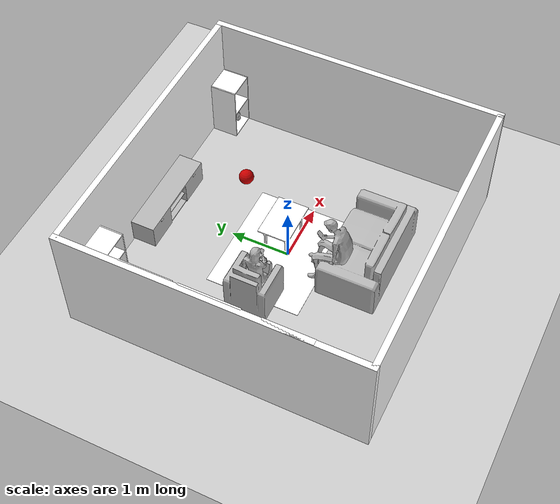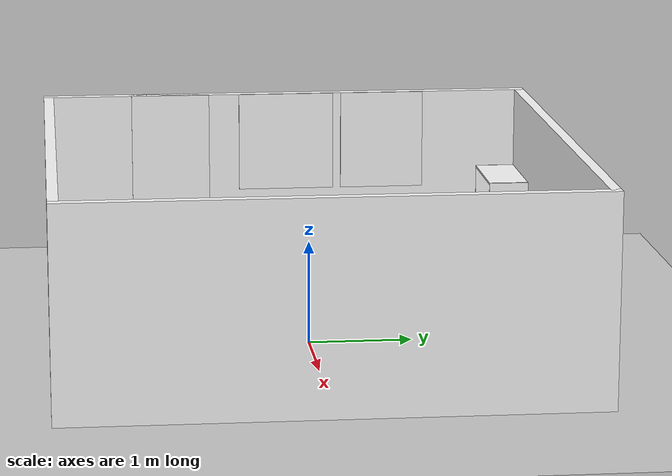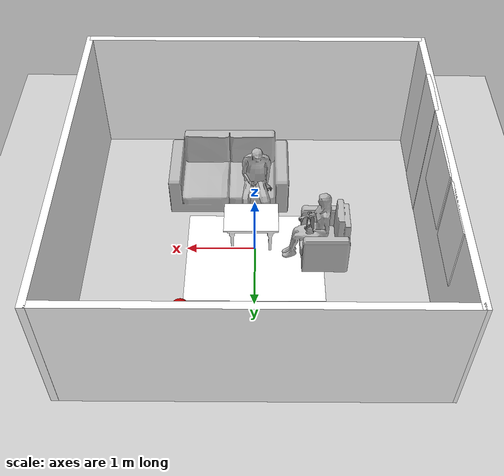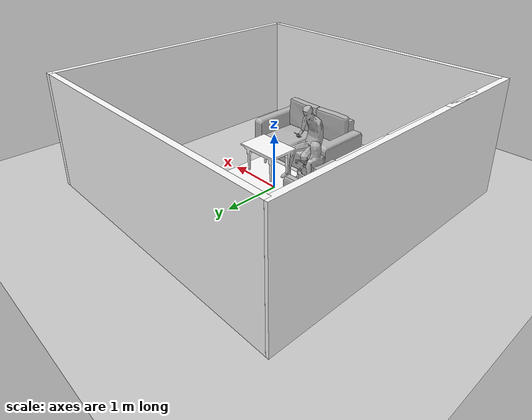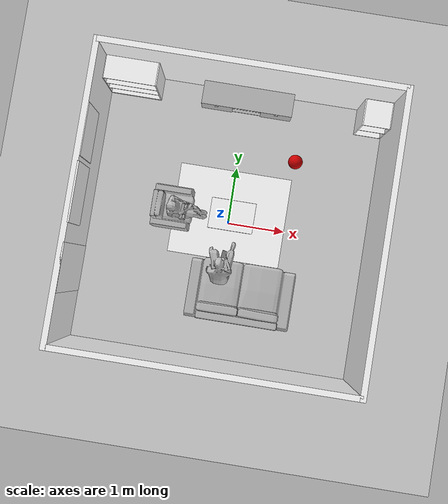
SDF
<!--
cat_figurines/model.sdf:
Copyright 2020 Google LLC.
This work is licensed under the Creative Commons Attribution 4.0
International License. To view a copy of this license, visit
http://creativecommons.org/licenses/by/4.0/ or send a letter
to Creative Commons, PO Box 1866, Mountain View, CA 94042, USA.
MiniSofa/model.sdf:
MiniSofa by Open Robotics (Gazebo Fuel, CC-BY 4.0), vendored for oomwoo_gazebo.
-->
<sdf version="1.10">
 <world name="default">
  <scene>
   <shadows>false</shadows>
   <ambient>0.400000006 0.400000006 0.400000006 1</ambient>
   <background>0.699999988 0.699999988 0.699999988 1</background>
  </scene>
  <physics type="ode">
   <real_time_update_rate>1000</real_time_update_rate>
   <max_step_size>0.001</max_step_size>
   <real_time_factor>1</real_time_factor>
   <ode>
    <solver>
     <type>quick</type>
     <iters>150</iters>
     <precon_iters>0</precon_iters>
     <sor>1.3999999999999999</sor>
     <use_dynamic_moi_rescaling>true</use_dynamic_moi_rescaling>
    </solver>
    <constraints>
     <cfm>1.0000000000000001e-05</cfm>
     <erp>0.20000000000000001</erp>
     <contact_max_correcting_vel>2000</contact_max_correcting_vel>
     <contact_surface_layer>0.01</contact_surface_layer>
    </constraints>
   </ode>
  </physics>
  <plugin name="gz::sim::systems::Physics" filename="gz-sim-physics-system"/>
  <plugin name="gz::sim::systems::UserCommands" filename="gz-sim-user-commands-system"/>
  <plugin name="gz::sim::systems::SceneBroadcaster" filename="gz-sim-scene-broadcaster-system"/>
  <plugin name="gz::sim::systems::Sensors" filename="gz-sim-sensors-system">
   <render_engine>ogre2</render_engine>
  </plugin>
  <plugin name="gz::sim::systems::Imu" filename="gz-sim-imu-system"/>
  <gravity>0 0 -9.8000000000000007</gravity>
  <magnetic_field>5.5644999999999998e-06 2.2875799999999999e-05 -4.2388400000000002e-05</magnetic_field>
  <atmosphere type="adiabatic"/>
  <include><uri>model://ground plane</uri><name>ground_plane</name></include>
  <model name="makerspet_poster">
   <static>true</static>
   <include><uri>model://makerspet_poster</uri></include>
   <pose>-2.45 1 1.5 0 -0 0</pose>
  </model>
  <model name="kaiaai_poster">
   <static>true</static>
   <include><uri>model://kaiaai_poster</uri></include>
   <pose>-2.45 0 1.5 0 -0 0</pose>
  </model>
  <model name="wall_0">
   <static>true</static>
   <include><uri>model://room_wall_2x5m</uri></include>
   <pose>-2.5 0 1 0 -0 0</pose>
  </model>
  <model name="wall_1">
   <static>true</static>
   <include><uri>model://room_wall_2x5m</uri></include>
   <pose>2.5 0 1 0 -0 0</pose>
  </model>
  <model name="wall_2">
   <static>true</static>
   <include><uri>model://room_wall_2x5m</uri></include>
   <pose>0 2.45 1 0 -0 1.5707</pose>
  </model>
  <model name="wall_3">
   <static>true</static>
   <include><uri>model://room_wall_2x5m</uri></include>
   <pose>0 -2.45 1 0 -0 1.5707</pose>
  </model>
  <light name="sun" type="directional">
   <cast_shadows>false</cast_shadows>
   <pose>0 0 10 0 -0 0</pose>
   <diffuse>0.8 0.8 0.8 1</diffuse>
   <specular>0.2 0.2 0.2 1</specular>
   <intensity>4</intensity>
   <attenuation>
    <range>1000</range>
    <constant>0.9</constant>
    <linear>0.01</linear>
    <quadratic>0.001</quadratic>
   </attenuation>
   <direction>-0.5 0.1 -0.9</direction>
   <spot><inner_angle>0</inner_angle><outer_angle>0</outer_angle><falloff>0</falloff></spot>
  </light>
  <model name="door_08x2m">
   <static>true</static>
   <include><uri>model://door_08x2m</uri></include>
   <pose>-2.495 -1.2 1 0 -0 0</pose>
  </model>
  <model name="cabinet">
   <static>true</static>
   <pose>2.21 2.17 0 0 -0 1.5707</pose>
   <include><uri>model://Cabinet</uri></include>
  </model>
  <model name="Bookshelf">
   <static>true</static>
   <pose>-2 2.4 0 0 -0 0</pose>
   <include><uri>model://Bookshelf</uri></include>
  </model>
  <model name="Cat Figurines">
   <static>true</static>
   <pose>2.21368 2.13863 0.019163 -0.003852 -0.005692 -1e-06</pose>
   <include><uri>model://cat_figurines</uri></include>
  </model>
  <model name="FemaleVisitorSit">
   <static>true</static>
   <pose>-0.91 0.09 0 0 -0 1.5707</pose>
   <include><uri>model://FemaleVisitorSit</uri></include>
  </model>
  <model name="MaleVisitorSit">
   <static>true</static>
   <pose>0 -0.91 0 0 -0 3.1415</pose>
   <include><uri>model://MaleVisitorSit</uri></include>
  </model>
  <model name="MiniSofa">
   <static>true</static>
   <pose>-1 0.1 0 0 -0 3.1415</pose>
   <include><uri>model://MiniSofa</uri></include>
  </model>
  <model name="Sofa">
   <static>true</static>
   <pose>0.394 -1.2 0 0 -0 1.5707</pose>
   <include><uri>model://Sofa</uri></include>
  </model>
  <model name="TVStand">
   <static>true</static>
   <pose>0 2.2 0 0 -0 0</pose>
   <include><uri>model://TVStand</uri></include>
  </model>
  <model name="red_ball_10in">
   <static>false</static>
   <pose>1 1.25 0.127 0 -0 0</pose>
   <include><uri>model://red_ball_10in</uri></include>
  </model>
  <model name="rug_ivory_2m">
   <static>true</static>
   <pose>0 0.15 0 0 -0 1.5707</pose>
   <include><uri>model://rug_ivory_2m</uri></include>
  </model>
  <model name="TableMarble">
   <static>true</static>
   <pose>0 0.1 0.324 0 -0 1.5708</pose>
   <include><uri>model://TableMarble</uri></include>
  </model>
 </world>
</sdf>

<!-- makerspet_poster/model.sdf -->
<sdf version='1.4'>
  <model name='makerspet_poster'>
    <link name="link">
      <visual name="visual">
        <geometry>
          <box>
            <size>0.03 0.85714 1</size>
          </box>
        </geometry>
        <material>
          <pbr>
            <metal>
              <albedo_map>textures/makerspet_logo_600x700.png</albedo_map>
            <metalness>0.0</metalness><roughness>0.80</roughness>
            </metal>
          </pbr>
          <ambient>1 1 1 1</ambient>
          <diffuse>1 1 1 1</diffuse>
          <specular>1 1 1 1</specular>
          <emissive>0 0 0 1</emissive>
        </material>
      </visual>
    </link>
    <static>1</static>
    <allow_auto_disable>1</allow_auto_disable>
  </model>
</sdf>

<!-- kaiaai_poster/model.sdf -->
<sdf version='1.4'>
  <model name='kaiaai_poster'>
    <link name="link">
      <visual name="visual">
        <geometry>
          <box>
            <size>0.03 0.9782 1</size>
          </box>
        </geometry>
        <material>
          <pbr>
            <metal>
              <albedo_map>textures/kaiaai_logo_450x460.png</albedo_map>
            <metalness>0.0</metalness><roughness>0.80</roughness>
            </metal>
          </pbr>
          <ambient>1 1 1 1</ambient>
          <diffuse>1 1 1 1</diffuse>
          <specular>1 1 1 1</specular>
          <emissive>0 0 0 1</emissive>
        </material>
      </visual>
    </link>
    <static>1</static>
    <allow_auto_disable>1</allow_auto_disable>
  </model>
</sdf>

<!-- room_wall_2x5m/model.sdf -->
<sdf version='1.4'>
  <model name='room_wall_2x5m'>
    <link name="link">
      <visual name="visual">
        <geometry>
          <box>
            <size>0.1 5.0 2.0</size>
          </box>
        </geometry>
        <material>
          <pbr>
            <metal>
              <albedo_map>textures/wall_texture_1404x562.jpg</albedo_map>
            <metalness>0.0</metalness><roughness>0.90</roughness>
            </metal>
          </pbr>
          <ambient>1 1 1 1</ambient>
          <diffuse>1 1 1 1</diffuse>
          <specular>1 1 1 1</specular>
          <emissive>0 0 0 1</emissive>
        </material>
        <cast_shadows>1</cast_shadows>
        <transparency>0</transparency>
      </visual>
      <collision name ="collision">
        <geometry>
           <box>
            <size>0.1 5.0 2.0</size>
          </box>
        </geometry>
      </collision>
    </link>
    <static>1</static>
    <allow_auto_disable>1</allow_auto_disable>
  </model>
</sdf>

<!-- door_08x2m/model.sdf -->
<sdf version='1.4'>
  <model name='door_08x2m'>
    <link name="link">
      <visual name="visual">
        <geometry>
          <box>
            <size>0.1 0.8 2</size>
          </box>
        </geometry>
        <material>
          <pbr>
            <metal>
              <albedo_map>textures/door_08x2m.png</albedo_map>
            <metalness>0.0</metalness><roughness>0.70</roughness>
            </metal>
          </pbr>
          <ambient>1 1 1 1</ambient>
          <diffuse>1 1 1 1</diffuse>
          <specular>1 1 1 1</specular>
          <emissive>0 0 0 1</emissive>
        </material>
        <cast_shadows>1</cast_shadows>
        <transparency>0</transparency>
      </visual>
    </link>
    <static>1</static>
    <allow_auto_disable>1</allow_auto_disable>
  </model>
</sdf>

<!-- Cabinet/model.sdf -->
<sdf version="1.5">
  <model name="cabinet">
    <static>true</static>
    <link name="cabinet_bottom_plate">
      <inertial>
        <pose>0 0 -1 0 0 0</pose>
        <inertia>
          <ixx>2.050000</ixx>
          <ixy>0</ixy>
          <ixz>0</ixz>
          <iyy>2.050000</iyy>
          <iyz>0</iyz>
          <izz>2.050000</izz>
        </inertia>
        <mass>25.000000</mass>
      </inertial>
      <collision name="cabinet_bottom_plate_geom">
        <pose>0 0 0.010000 0 0 0</pose>
        <geometry>
          <box>
            <size>0.450000 0.450000 0.020000</size>
          </box>
        </geometry>
      </collision>
      <visual name="cabinet_bottom_plate_geom_visual">
        <pose>0 0 0.010000 0 0 0</pose>
        <geometry>
          <box>
            <size>0.450000 0.450000 0.020000</size>
          </box>
        </geometry>
        <material>
          <pbr>
            <metal>
              <albedo_map>textures/wood.png</albedo_map>
            </metal>
          </pbr>
          <ambient>1 1 1 1</ambient>
          <diffuse>1 1 1 1</diffuse>
          <specular>0.2 0.2 0.2 1</specular>                                                         <emissive>0 0 0 1</emissive>
        </material>
        <cast_shadows>1</cast_shadows>
        <transparency>0</transparency>
      </visual>
      <collision name="cabinet_bottom_plate_geom_cabinet_back_plate">
        <pose>0.235000 0 0.510000 0 0 0</pose>
        <geometry>
          <box>
            <size>0.020000 0.450000 1.020000</size>
          </box>
        </geometry>
      </collision>
      <visual name="cabinet_bottom_plate_geom_cabinet_back_plate_visual">
        <pose>0.235000 0 0.510000 0 0 0</pose>
        <geometry>
          <box>
            <size>0.020000 0.450000 1.020000</size>
          </box>
        </geometry>
        <material>
          <pbr>
            <metal>
              <albedo_map>textures/wood.png</albedo_map>
            </metal>
          </pbr>
          <ambient>1 1 1 1</ambient>
          <diffuse>1 1 1 1</diffuse>
          <specular>0.2 0.2 0.2 1</specular>                                                         <emissive>0 0 0 1</emissive>
        </material>
        <cast_shadows>1</cast_shadows>
        <transparency>0</transparency>
      </visual>
      <collision name="cabinet_bottom_plate_geom_cabinet_left_plate">
        <pose>0 0.235000 0.510000 0 0 0</pose>
        <geometry>
          <box>
            <size>0.450000 0.020000 1.020000</size>
          </box>
        </geometry>
      </collision>
      <visual name="cabinet_bottom_plate_geom_cabinet_left_plate_visual">
        <pose>0 0.235000 0.510000 0 0 0</pose>
        <geometry>
          <box>
            <size>0.450000 0.020000 1.020000</size>
          </box>
        </geometry>
        <material>
          <pbr>
            <metal>
              <albedo_map>textures/wood.png</albedo_map>
            </metal>
          </pbr>
          <ambient>1 1 1 1</ambient>
          <diffuse>1 1 1 1</diffuse>
          <specular>0.2 0.2 0.2 1</specular>                                                         <emissive>0 0 0 1</emissive>
        </material>
        <cast_shadows>1</cast_shadows>
        <transparency>0</transparency>
      </visual>
      <collision name="cabinet_bottom_plate_geom_cabinet_middle_plate">
        <pose>0 0 0.510000 0 0 0</pose>
        <geometry>
          <box>
            <size>0.450000 0.450000 0.020000</size>
          </box>
        </geometry>
      </collision>
      <visual name="cabinet_bottom_plate_geom_cabinet_middle_plate_visual">
        <pose>0 0 0.510000 0 0 0</pose>
        <geometry>
          <box>
            <size>0.450000 0.450000 0.020000</size>
          </box>
        </geometry>
        <material>
          <pbr>
            <metal>
              <albedo_map>textures/wood.png</albedo_map>
            </metal>
          </pbr>
          <ambient>1 1 1 1</ambient>
          <diffuse>1 1 1 1</diffuse>
          <specular>0.2 0.2 0.2 1</specular>                                                         <emissive>0 0 0 1</emissive>
        </material>
        <cast_shadows>1</cast_shadows>
        <transparency>0</transparency>
      </visual>
      <collision name="cabinet_bottom_plate_geom_cabinet_right_plate">
        <pose>0 -0.235000 0.510000 0 0 0</pose>
        <geometry>
          <box>
            <size>0.450000 0.020000 1.020000</size>
          </box>
        </geometry>
      </collision>
      <visual name="cabinet_bottom_plate_geom_cabinet_right_plate_visual">
        <pose>0 -0.235000 0.510000 0 0 0</pose>
        <geometry>
          <box>
            <size>0.450000 0.020000 1.020000</size>
          </box>
        </geometry>
        <material>
          <pbr>
            <metal>
              <albedo_map>textures/wood.png</albedo_map>
            </metal>
          </pbr>
          <ambient>1 1 1 1</ambient>
          <diffuse>1 1 1 1</diffuse>
          <specular>0.2 0.2 0.2 1</specular>                                                         <emissive>0 0 0 1</emissive>
        </material>
        <cast_shadows>1</cast_shadows>
        <transparency>0</transparency>
      </visual>
      <collision name="cabinet_bottom_plate_geom_cabinet_top_plate">
        <pose>0 0 1.010000 0 0 0</pose>
        <geometry>
          <box>
            <size>0.450000 0.450000 0.020000</size>
          </box>
        </geometry>
      </collision>
      <visual name="cabinet_bottom_plate_geom_cabinet_top_plate_visual">
        <pose>0 0 1.010000 0 0 0</pose>
        <geometry>
          <box>
            <size>0.450000 0.450000 0.020000</size>
          </box>
        </geometry>
        <material>
          <pbr>
            <metal>
              <albedo_map>textures/wood.png</albedo_map>
            </metal>
          </pbr>
          <ambient>1 1 1 1</ambient>
          <diffuse>1 1 1 1</diffuse>
          <specular>0.2 0.2 0.2 1</specular>                                                         <emissive>0 0 0 1</emissive>
        </material>
        <cast_shadows>1</cast_shadows>
        <transparency>0</transparency>
      </visual>
    </link>
  </model>
</sdf>

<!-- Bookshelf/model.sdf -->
<sdf version="1.5">
  <model name="Bookshelf">
    <static>true</static>
    <link name="link">
      <inertial>
        <mass>1.0</mass>
      </inertial>
      <collision name="back">
        <pose>0 0.005 0.6 0 0 0</pose>
        <geometry>
          <box>
            <size>0.9 0.01 1.2</size>
          </box>
        </geometry>
      </collision>
      <visual name="visual1">
        <pose>0 0.005 0.6 0 0 0</pose>
        <geometry>
          <box>
            <size>0.9 0.01 1.2</size>
          </box>
        </geometry>
        <material>
          <diffuse>1.0 1.0 1.0</diffuse>
          <pbr>
            <metal>
              <albedo_map>textures/bookshelf_diffuse.jpg</albedo_map>
            </metal>
          </pbr>
        </material>
      </visual>
      <collision name="left_side">
        <pose>0.45 -0.195 0.6 0 0 0</pose>
        <geometry>
          <box>
            <size>0.02 0.4 1.2</size>
          </box>
        </geometry>
      </collision>
      <visual name="visual2">
        <pose>0.45 -0.195 0.6 0 0 0</pose>
        <geometry>
          <box>
            <size>0.02 0.4 1.2</size>
          </box>
        </geometry>
        <material>
          <diffuse>1.0 1.0 1.0</diffuse>
          <pbr>
            <metal>
              <albedo_map>textures/bookshelf_diffuse.jpg</albedo_map>
            </metal>
          </pbr>
        </material>
      </visual>
      <collision name="right_side">
        <pose>-0.45 -0.195 0.6 0 0 0</pose>
        <geometry>
          <box>
            <size>0.02 0.4 1.2</size>
          </box>
        </geometry>
      </collision>
      <visual name="visual3">
        <pose>-0.45 -0.195 0.6 0 0 0</pose>
        <geometry>
          <box>
            <size>0.02 0.4 1.2</size>
          </box>
        </geometry>
        <material>
          <diffuse>1.0 1.0 1.0</diffuse>
          <pbr>
            <metal>
              <albedo_map>textures/bookshelf_diffuse.jpg</albedo_map>
            </metal>
          </pbr>
        </material>
      </visual>
      <collision name="bottom">
        <pose>0 -0.195 0.03 0 0 0</pose>
        <geometry>
          <box>
            <size>0.88 0.4 0.06</size>
          </box>
        </geometry>
      </collision>
      <visual name="visual4">
        <pose>0 -0.195 0.03 0 0 0</pose>
        <geometry>
          <box>
            <size>0.88 0.4 0.06</size>
          </box>
        </geometry>
        <material>
          <diffuse>1.0 1.0 1.0</diffuse>
          <pbr>
            <metal>
              <albedo_map>textures/bookshelf_diffuse.jpg</albedo_map>
            </metal>
          </pbr>
        </material>
      </visual>
      <collision name="top">
        <pose>0 -0.195 1.19 0 0 0</pose>
        <geometry>
          <box>
            <size>0.88 0.4 0.02</size>
          </box>
        </geometry>
      </collision>
      <visual name="visual5">
        <pose>0 -0.195 1.19 0 0 0</pose>
        <geometry>
          <box>
            <size>0.88 0.4 0.02</size>
          </box>
        </geometry>
        <material>
          <diffuse>1.0 1.0 1.0</diffuse>
          <pbr>
            <metal>
              <albedo_map>textures/bookshelf_diffuse.jpg</albedo_map>
            </metal>
          </pbr>
        </material>
      </visual>
      <collision name="low_shelf">
        <pose>0 -0.195 0.43 0 0 0</pose>
        <geometry>
          <box>
            <size>0.88 0.4 0.02</size>
          </box>
        </geometry>
      </collision>
      <visual name="visual6">
        <pose>0 -0.195 0.43 0 0 0</pose>
        <geometry>
          <box>
            <size>0.88 0.4 0.02</size>
          </box>
        </geometry>
        <material>
          <diffuse>1.0 1.0 1.0</diffuse>
          <pbr>
            <metal>
              <albedo_map>textures/bookshelf_diffuse.jpg</albedo_map>
            </metal>
          </pbr>
        </material>
      </visual>
      <collision name="high_shelf">
        <pose>0 -0.195 0.8 0 0 0</pose>
        <geometry>
          <box>
            <size>0.88 0.4 0.02</size>
          </box>
        </geometry>
      </collision>
      <visual name="visual7">
        <pose>0 -0.195 0.8 0 0 0</pose>
        <geometry>
          <box>
            <size>0.88 0.4 0.02</size>
          </box>
        </geometry>
        <material>
          <diffuse>1.0 1.0 1.0</diffuse>
          <pbr>
            <metal>
              <albedo_map>textures/bookshelf_diffuse.jpg</albedo_map>
            </metal>
          </pbr>
        </material>
      </visual>
    </link>
  </model>
</sdf>

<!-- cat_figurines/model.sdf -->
<sdf version="1.6">
  <model name="Cat Figurines">
    <link name="link_0">
      <visual name="visual">
        <geometry>
          <mesh>
            <uri>meshes/model.obj</uri>
            <scale>3 3 3</scale>
          </mesh>
        </geometry>
      </visual>
      <collision name="collision_0">
        <geometry>
          <mesh>
            <uri>meshes/model.obj</uri>
            <scale>3 3 3</scale>
          </mesh>
        </geometry>
      </collision>
    </link>
  </model>
</sdf>

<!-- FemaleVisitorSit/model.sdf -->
<sdf version="1.6">
  <model name="FemaleVisitorSit">
   <static>true</static>
    <link name="body">
      <pose>0 0 0 0 0 0</pose>

      <visual name="visual">
        <geometry>
          <mesh>
            <uri>meshes/FemaleVisitorSit.obj</uri>
          </mesh>
        </geometry>
      </visual>

      <collision name="collision">
        <geometry>
          <mesh>
            <uri>meshes/FemaleVisitorSit.obj</uri>
          </mesh>
        </geometry>
      </collision>

    </link>
  </model>
</sdf>

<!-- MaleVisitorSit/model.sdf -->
<sdf version="1.6">
  <model name="MaleVisitorSit">
   <static>true</static>
    <link name="body">
      <pose>0 0 0 0 0 0</pose>

      <visual name="visual">
        <geometry>
          <mesh>
            <uri>meshes/MaleVisitorSit.obj</uri>
          </mesh>
        </geometry>
      </visual>

      <collision name="collision">
        <geometry>
          <mesh>
            <uri>meshes/MaleVisitorSit.obj</uri>
          </mesh>
        </geometry>
      </collision>

    </link>
  </model>
</sdf>

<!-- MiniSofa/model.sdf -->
<sdf version="1.6">
  <model name='MiniSofa'>
    <link name="body">
      <pose>0 0 0 0 0 -1.57079632679</pose>

      <visual name="visual">
        <geometry>
          <mesh>
            <uri>meshes/minisofa.obj</uri>
            <scale>1.00 1.00 1.5729</scale>
          </mesh>
        </geometry>
      </visual>

      <collision name="collision">
        <geometry>
          <mesh>
            <uri>meshes/minisofa.obj</uri>
            <scale>1.00 1.00 1.5729</scale>
          </mesh>
        </geometry>
      </collision>

    </link>
    <static>1</static>
  </model>
</sdf>

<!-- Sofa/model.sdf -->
<sdf version="1.5">
  <model name="Sofa">
    <link name="link">
      <pose>0 0 0 0 0 1.57079632679</pose>

        <visual name="visual">
          <geometry>
            <mesh><uri>meshes/Sofa.obj</uri></mesh>
          </geometry>
        </visual>

        <collision name="collision">
          <geometry>
            <mesh><uri>meshes/Sofa.obj</uri></mesh>
          </geometry>
        </collision>

    </link>
    <static>1</static>
  </model>
</sdf>

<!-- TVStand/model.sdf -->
<sdf version="1.6">
  <model name="TVStand">
   <static>true</static>
    <link name="body">
      <pose>0 0 0 0 0 0</pose>

      <visual name="visual">
        <geometry>
          <mesh>
            <uri>meshes/TVStand.obj</uri>
          </mesh>
        </geometry>
      </visual>

      <collision name="collision">
        <geometry>
          <mesh>
            <uri>meshes/TVStand_Col.obj</uri>
          </mesh>
        </geometry>
      </collision>

    </link>
  </model>
</sdf>

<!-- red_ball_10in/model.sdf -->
<sdf version="1.5">
  <model name="red_ball_10in">
    <pose>0 0 0.127 0 0 0</pose>
    <link name="link">
      <inertial>
        <mass>0.213</mass>
        <inertia>
          <ixx>0.003226667</ixx>
          <ixy>0</ixy>
          <ixz>0</ixz>
          <iyy>0.003226667</iyy>
          <iyz>0</iyz>
          <izz>0.003226667</izz>
        </inertia>
      </inertial>
      <visual name="visual">
        <geometry>
          <sphere>
            <radius>0.127</radius>
          </sphere>
        </geometry>
        <material>
          <ambient>0.8 0 0 1</ambient>
          <diffuse>0.8 0 0 1</diffuse>
          <specular>0.8 0 0 1</specular>
        </material>
      </visual>
      <collision name="collision">
        <geometry>
          <sphere>
            <radius>0.127</radius>
          </sphere>
        </geometry>
        <surface>
          <bounce>
            <restitution_coefficient>0.15937</restitution_coefficient>
            <threshold>0</threshold>
          </bounce>
          <contact>
            <ode>
              <max_vel>100</max_vel>
              <min_depth>0.001</min_depth>
            </ode>
          </contact>
        </surface>
      </collision>
    </link>
  </model>
</sdf>

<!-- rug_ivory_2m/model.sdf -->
<sdf version='1.4'>
  <model name='rug_ivory_2m'>
    <link name="link">
      <visual name="visual">
        <geometry>
          <box>
            <size>1.6 2 0.005</size>
          </box>
        </geometry>
        <material>
          <pbr>
            <metal>
              <albedo_map>textures/rug_ivory_469x588.png</albedo_map>
            </metal>
          </pbr>
          <ambient>1 1 1 1</ambient>
          <diffuse>1 1 1 1</diffuse>
          <specular>1 1 1 1</specular>
          <emissive>0 0 0 1</emissive>
        </material>
      </visual>
    </link>
    <static>1</static>
    <allow_auto_disable>1</allow_auto_disable>
  </model>
</sdf>

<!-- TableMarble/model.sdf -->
<sdf version="1.5">
  <model name="table_marble">
    <static>true</static>
    <pose>0 0 0.324 0 0 0</pose>
    <link name="link">
      <collision name="collision">
        <geometry>
          <mesh>
            <uri>meshes/table_lightmap.dae</uri>
            <scale>0.05 0.1 0.125</scale>
          </mesh>
        </geometry>
      </collision>
      <visual name="visual">
        <geometry>
          <mesh>
            <uri>meshes/table_lightmap.dae</uri>
            <scale>0.05 0.1 0.125</scale>
          </mesh>
        </geometry>
        <material>
          <pbr>
            <metal>
              <albedo_map>textures/marble.png</albedo_map>
            </metal>
          </pbr>
          <ambient>1 1 1 1</ambient>
          <diffuse>1 1 1 1</diffuse>
          <specular>1 1 1 1</specular>
          <emissive>0 0 0 1</emissive>
        </material>
      </visual>
    </link>
  </model>
</sdf>
